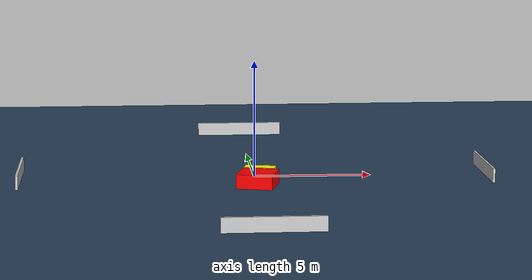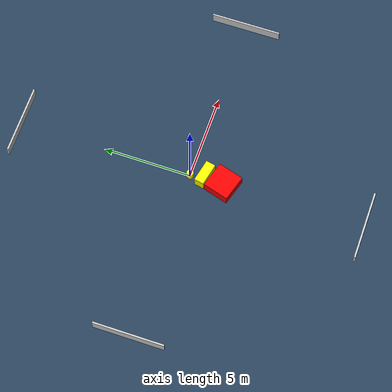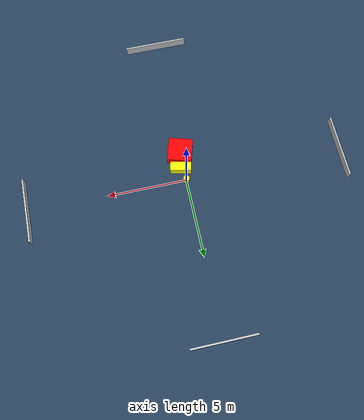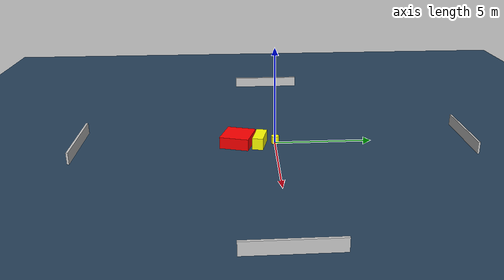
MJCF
<?xml version="1.0" ?>
<mujoco model="generated_environment">
  <option timestep="0.01" integrator="RK4" cone="elliptic"/>
  <default>
    <geom density="1"/>
  </default>
  <asset>
    <texture builtin="gradient" height="3072" name="skybox" rgb1="0.3 0.5 0.7" rgb2="0 0 0" type="skybox" width="512"/>
    <texture builtin="checker" height="300" name="groundplane" rgb1="0.2 0.3 0.4" rgb2="0.1 0.2 0.3" type="2d" width="300"/>
    <material name="groundplane" reflectance="0.2" texrepeat="5 5" texture="groundplane"/>
  </asset>
  <worldbody>
    <light dir="0 0 -1" directional="true" pos="0 0 1.5"/>
    <geom condim="3" friction="0.5 0.005 0.001" material="groundplane" name="floor" pos="0 0 0" size="0 0 0.05" type="plane"/>
    <body name="walls">
      <geom name="wall_1" condim="4" pos="-10.0 0.0 0.3" rgba="0.800000011920929 0.800000011920929 0.800000011920929 1.0" size="0.05 2.0 0.3" type="box"/>
      <geom name="wall_2" condim="4" pos="10.0 0.0 0.3" rgba="0.800000011920929 0.800000011920929 0.800000011920929 1.0" size="0.05 2.0 0.3" type="box"/>
      <geom name="wall_3" condim="4" pos="0.0 -10.0 0.3" rgba="0.800000011920929 0.800000011920929 0.800000011920929 1.0" size="2.0 0.05 0.3" type="box"/>
      <geom name="wall_4" condim="4" pos="0.0 10.0 0.3" rgba="0.800000011920929 0.800000011920929 0.800000011920929 1.0" size="2.0 0.05 0.3" type="box"/>
    </body>
    <body name="robot">
      <joint name="joint_x" type="slide" pos="0 0 0" axis="1 0 0"/>
      <joint name="joint_y" type="slide" pos="0 0 0" axis="0 1 0"/>
      <geom name="robot" type="cylinder" pos="0.0 0.0 0.2" size="0.2 0.2 0.0" mass="5.0" friction="1.0 0.005 0.0001" condim="4" rgba="1.0 1.0 0.0 1.0"/>
    </body>
    <body name="obstacle_1_movable">
      <geom name="obstacle_1_movable" condim="4" pos="0.18922581187807302 -0.7964402821145137 0.3" euler="0 0 77.69303599515113" friction="0.0 0.005 0.001" rgba="1.0 1.0 0.0 1.0" size="0.2762877273509819 0.6576712987753699 0.3" type="box" mass="0.1"/>
      <joint type="free"/>
    </body>
    <body name="obstacle_2_static">
      <geom name="obstacle_2_static" condim="4" pos="0.0016510432641359534 -1.9147029370350594 0.3" euler="0 0 253.44955534890892" friction="0.0 0.005 0.001" rgba="1.0 0.0 0.0 1.0" size="0.7497348532618555 0.7634345077568456 0.3" type="box"/>
    </body>
  </worldbody>
  <actuator>
    <motor name="actuator_x" joint="joint_x" gear="1" ctrlrange="-1 1"/>
    <motor name="actuator_y" joint="joint_y" gear="1" ctrlrange="-1 1"/>
  </actuator>
</mujoco>
